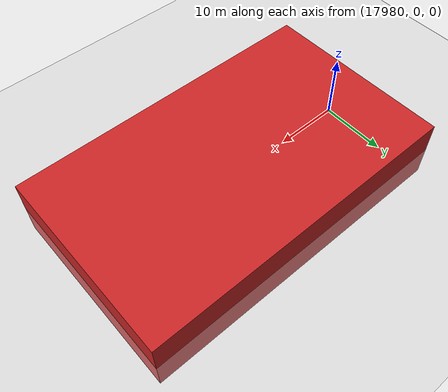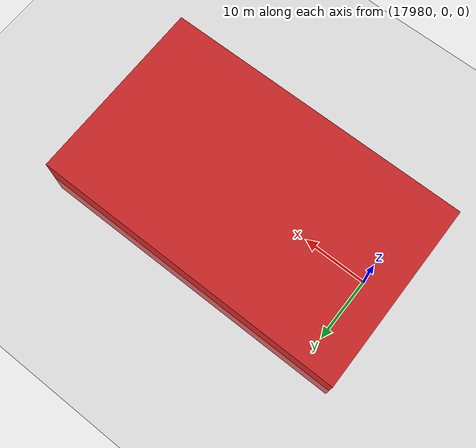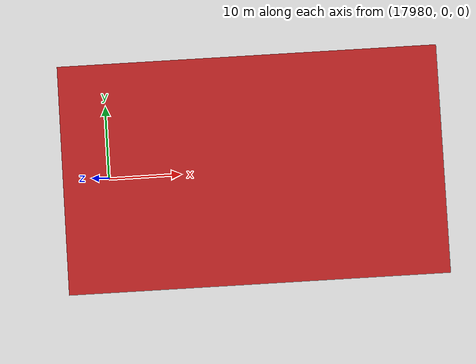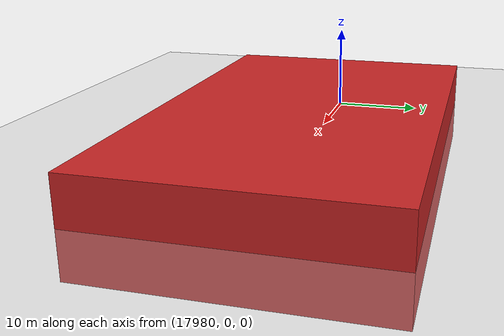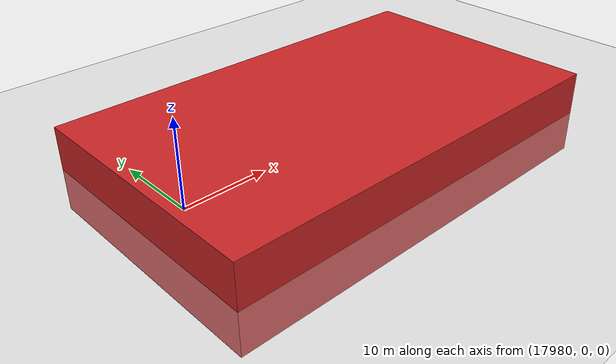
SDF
<?xml version="1.0" ?>
<sdf version="1.7">
  <world name="my_world">
    <scene>
      <ambient>0.8 0.8 0.8</ambient>
      <background>0.0 0.0 0.0</background>
    </scene>

    <light type="directional" name="sun">
      <cast_shadows>true</cast_shadows>
      <pose>0 0 10 0 0 0</pose>
      <diffuse>0.8 0.8 0.8 1</diffuse>
      <specular>0.2 0.2 0.2 1</specular>
      <attenuation>
        <range>40000</range>
        <constant>0.9</constant>
        <linear>0.01</linear>
        <quadratic>0.001</quadratic>
      </attenuation>
      <direction>-0.5 0.1 -0.9</direction>
    </light>

    <model name="ground_plane">
      <static>true</static>
      <link name="ground">
        <collision name="collision">
          <geometry>
            <plane>
              <normal>0 0 1</normal>
              <size>40000 40000</size>
            </plane>
          </geometry>
          <surface>
            <contact>
               <collide_bitmask>0xffff</collide_bitmask>
            </contact>
            <friction>
              <ode>
                <mu>100</mu>
                <mu2>50</mu2>
              </ode>
            </friction>
          </surface>
        </collision>
        <visual name="visual">
          <cast_shadows>false</cast_shadows>
          <geometry>
            <plane>
              <normal>0 0 1</normal>
              <size>40000 40000</size>
            </plane>
          </geometry>
          <material>
            <script>
              <uri>file://media/materials/scripts/gazebo.material</uri>
              <name>Gazebo/Grey</name>
            </script>
          </material>
        </visual>
      </link>
    </model>

    <model name="target_box">
      <pose>18000 0 0 0 0 0</pose>
      <link name="big_red_box">
        <inertial>
          <mass>1000000</mass>
          <inertia>
            <ixx>800000</ixx>
            <ixy>0</ixy>
            <ixz>0</ixz>
            <iyy>2000000</iyy>
            <iyz>0</iyz>
            <izz>3000000</izz>
          </inertia>
        </inertial>
        <collision name="collision">
          <geometry>
            <box>
              <size>5 3 1</size>
            </box>
          </geometry>
          <surface>
            <contact>
              <ode/>
            </contact>
            <friction>
              <ode>
                <mu>1</mu>
                <mu2>1</mu2>
              </ode>
            </friction>
          </surface>
        </collision>
        <visual name="visual">
          <geometry>
            <box>
              <size>50 30 10</size>
            </box>
          </geometry>
          <material>
            <script>
              <name>Gazebo/Red</name>
              <uri>file://media/materials/scripts/gazebo.material</uri>
            </script>
          </material>
        </visual>
      </link>
    </model>

    <gui fullscreen='0'>
      <camera name='follower_camera'>
        <view_controller>orbit</view_controller>
        <projection_type>perspective</projection_type>
        <track_visual>
          <min_dist>2.0</min_dist>
          <max_dist>10.0</max_dist>
          <static>true</static>

          <!-- for propulsion simulation -->
          <xyz>-5 -2 -1</xyz>

          <!-- for launching with canister -->

          <use_model_frame>true</use_model_frame>

          <inherit_yaw>true</inherit_yaw>
        </track_visual>
      </camera>
    </gui>

    <plugin name="GazeboPlugin" filename="lib/libGazeboCoSimPlugin.so">
      <portNumber>14581</portNumber>
    </plugin>

  </world>
</sdf>
